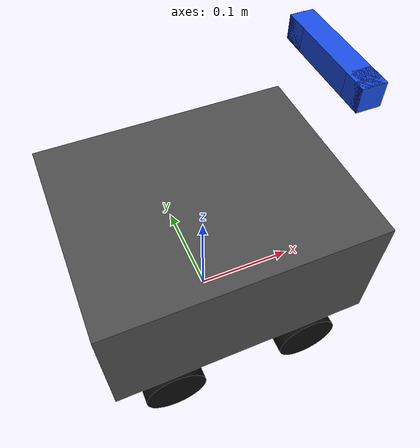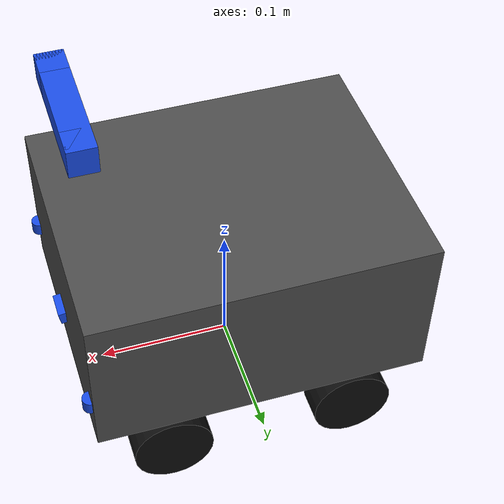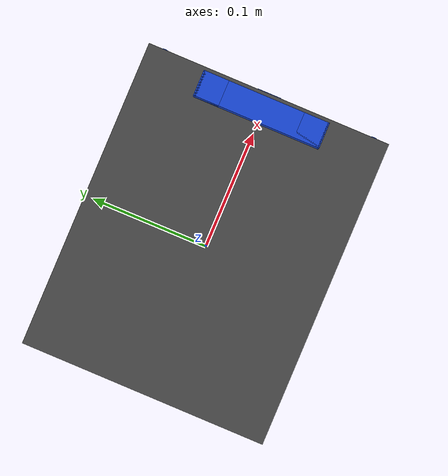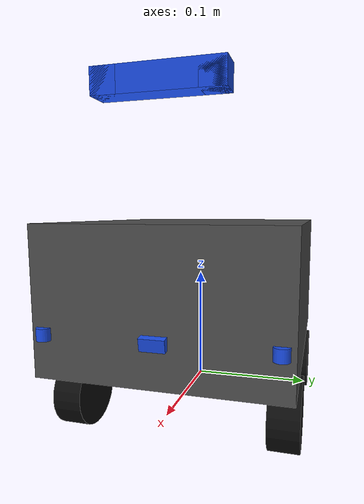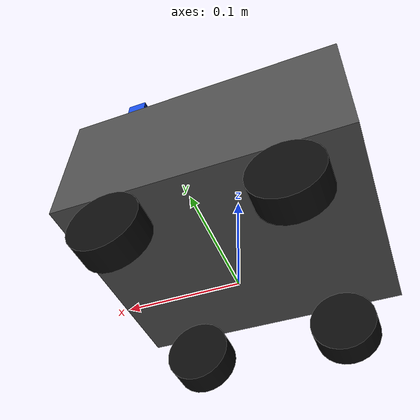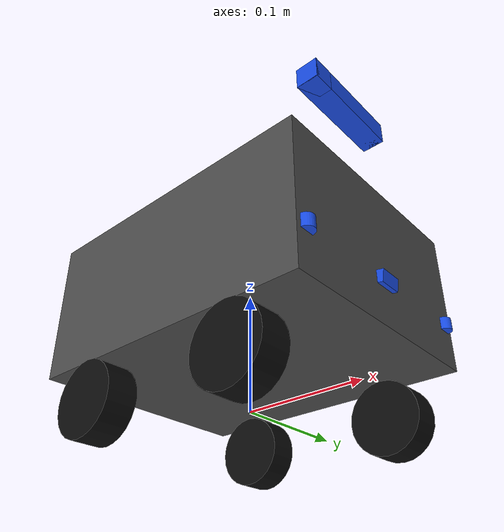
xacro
<?xml version="1.0"?>
<robot name="robo" xmlns:xacro="http://www.ros.org/wiki/xacro">

  <xacro:arg name="use_sim" default="false"/>

  <!-- ================= Placeholder dimension properties ================= -->
  <!-- Chassis -->
  <xacro:property name="chassis_length" value="0.250"/>
  <xacro:property name="chassis_width" value="0.200"/>
  <xacro:property name="chassis_height" value="0.120"/>
  <xacro:property name="chassis_mass" value="1.8"/>
  <!-- ground clearance: half wheel diameter, chassis sits on top of wheel centers -->
  <xacro:property name="ground_clearance" value="0.030"/>

  <!-- Wheels -->
  <xacro:property name="wheel_diameter" value="0.060"/>
  <xacro:property name="wheel_radius" value="${wheel_diameter / 2.0}"/>
  <xacro:property name="wheel_width" value="0.025"/>
  <xacro:property name="wheel_mass" value="0.15"/>
  <xacro:property name="track_width" value="0.180"/>
  <xacro:property name="wheelbase" value="0.140"/>

  <!-- Camera mount / stereo -->
  <xacro:property name="camera_mount_height_above_chassis_top" value="0.100"/>
  <xacro:property name="camera_mount_pitch" value="0.0"/>
  <xacro:property name="stereo_baseline" value="0.080"/>
  <xacro:property name="camera_hfov" value="1.086"/>
  <xacro:property name="camera_width_px" value="1280"/>
  <xacro:property name="camera_height_px" value="720"/>
  <xacro:property name="camera_update_rate" value="30"/>

  <!-- IMU -->
  <xacro:property name="imu_z_offset" value="${ground_clearance + chassis_height / 2.0}"/>

  <!-- ToF -->
  <xacro:property name="tof_pitch" value="0.1745"/> <!-- 10 deg down -->

  <!-- Ultrasonics -->
  <xacro:property name="us_yaw" value="0.3491"/> <!-- 20 deg -->

  <xacro:property name="base_z" value="${ground_clearance + wheel_radius}"/>

  <material name="chassis_grey">
    <color rgba="0.3 0.3 0.3 1.0"/>
  </material>
  <material name="wheel_black">
    <color rgba="0.05 0.05 0.05 1.0"/>
  </material>
  <material name="sensor_blue">
    <color rgba="0.1 0.3 0.9 1.0"/>
  </material>

  <!-- ================= base_link ================= -->
  <link name="base_link"/>

  <!-- ================= chassis ================= -->
  <joint name="base_link_to_chassis" type="fixed">
    <parent link="base_link"/>
    <child link="chassis_link"/>
    <origin xyz="0 0 ${wheel_radius}" rpy="0 0 0"/>
  </joint>

  <link name="chassis_link">
    <visual>
      <origin xyz="0 0 ${chassis_height / 2.0}" rpy="0 0 0"/>
      <geometry>
        <box size="${chassis_length} ${chassis_width} ${chassis_height}"/>
      </geometry>
      <material name="chassis_grey"/>
    </visual>
    <collision>
      <origin xyz="0 0 ${chassis_height / 2.0}" rpy="0 0 0"/>
      <geometry>
        <box size="${chassis_length} ${chassis_width} ${chassis_height}"/>
      </geometry>
    </collision>
    <inertial>
      <origin xyz="0 0 ${chassis_height / 2.0}" rpy="0 0 0"/>
      <mass value="${chassis_mass}"/>
      <inertia
        ixx="${chassis_mass / 12.0 * (chassis_width*chassis_width + chassis_height*chassis_height)}" ixy="0" ixz="0"
        iyy="${chassis_mass / 12.0 * (chassis_length*chassis_length + chassis_height*chassis_height)}" iyz="0"
        izz="${chassis_mass / 12.0 * (chassis_length*chassis_length + chassis_width*chassis_width)}"/>
    </inertial>
  </link>

  <!-- ================= wheels ================= -->
  <xacro:macro name="wheel" params="prefix x_offset y_offset">
    <joint name="wheel_${prefix}_joint" type="continuous">
      <parent link="base_link"/>
      <child link="wheel_${prefix}_link"/>
      <origin xyz="${x_offset} ${y_offset} 0" rpy="${-pi/2} 0 0"/>
      <axis xyz="0 0 1"/>
      <dynamics damping="0.1" friction="0.05"/>
    </joint>
    <link name="wheel_${prefix}_link">
      <visual>
        <geometry>
          <cylinder radius="${wheel_radius}" length="${wheel_width}"/>
        </geometry>
        <material name="wheel_black"/>
      </visual>
      <collision>
        <geometry>
          <cylinder radius="${wheel_radius}" length="${wheel_width}"/>
        </geometry>
      </collision>
      <inertial>
        <mass value="${wheel_mass}"/>
        <inertia
          ixx="${wheel_mass / 12.0 * (3*wheel_radius*wheel_radius + wheel_width*wheel_width)}" ixy="0" ixz="0"
          iyy="${wheel_mass / 12.0 * (3*wheel_radius*wheel_radius + wheel_width*wheel_width)}" iyz="0"
          izz="${wheel_mass / 2.0 * wheel_radius*wheel_radius}"/>
      </inertial>
    </link>
  </xacro:macro>

  <!-- Left pair (fl, rl) and right pair (fr, rr): differential / skid-steer drive,
       DiffDrive plugin (Phase 1) drives left pair and right pair together. -->
  <xacro:wheel prefix="fl" x_offset="${wheelbase / 2.0}"  y_offset="${track_width / 2.0}"/>
  <xacro:wheel prefix="fr" x_offset="${wheelbase / 2.0}"  y_offset="${-track_width / 2.0}"/>
  <xacro:wheel prefix="rl" x_offset="${-wheelbase / 2.0}" y_offset="${track_width / 2.0}"/>
  <xacro:wheel prefix="rr" x_offset="${-wheelbase / 2.0}" y_offset="${-track_width / 2.0}"/>

  <!-- ================= camera mount + stereo cameras ================= -->
  <joint name="base_link_to_camera_mount" type="fixed">
    <parent link="base_link"/>
    <child link="camera_mount_link"/>
    <origin xyz="${chassis_length / 2.0 - 0.02} 0 ${wheel_radius + chassis_height + camera_mount_height_above_chassis_top}"
            rpy="0 ${camera_mount_pitch} 0"/>
  </joint>
  <link name="camera_mount_link">
    <visual>
      <geometry>
        <box size="0.02 0.10 0.02"/>
      </geometry>
      <material name="sensor_blue"/>
    </visual>
  </link>

  <joint name="camera_mount_to_camera_left" type="fixed">
    <parent link="camera_mount_link"/>
    <child link="camera_left_link"/>
    <origin xyz="0 ${stereo_baseline / 2.0} 0" rpy="0 0 0"/>
  </joint>
  <link name="camera_left_link">
    <visual>
      <geometry>
        <box size="0.02 0.02 0.02"/>
      </geometry>
      <material name="sensor_blue"/>
    </visual>
  </link>

  <!-- REP-103: optical frame is Z-forward, X-right, Y-down relative to the
       X-forward, Y-left, Z-up camera link. -->
  <joint name="camera_left_to_optical" type="fixed">
    <parent link="camera_left_link"/>
    <child link="camera_left_optical"/>
    <origin xyz="0 0 0" rpy="${-pi/2} 0 ${-pi/2}"/>
  </joint>
  <link name="camera_left_optical"/>

  <joint name="camera_mount_to_camera_right" type="fixed">
    <parent link="camera_mount_link"/>
    <child link="camera_right_link"/>
    <origin xyz="0 ${-stereo_baseline / 2.0} 0" rpy="0 0 0"/>
  </joint>
  <link name="camera_right_link">
    <visual>
      <geometry>
        <box size="0.02 0.02 0.02"/>
      </geometry>
      <material name="sensor_blue"/>
    </visual>
  </link>

  <joint name="camera_right_to_optical" type="fixed">
    <parent link="camera_right_link"/>
    <child link="camera_right_optical"/>
    <origin xyz="0 0 0" rpy="${-pi/2} 0 ${-pi/2}"/>
  </joint>
  <link name="camera_right_optical"/>

  <!-- ================= IMU ================= -->
  <joint name="base_link_to_imu" type="fixed">
    <parent link="base_link"/>
    <child link="imu_link"/>
    <origin xyz="0 0 ${imu_z_offset}" rpy="0 0 0"/>
  </joint>
  <link name="imu_link">
    <visual>
      <geometry>
        <box size="0.01 0.01 0.005"/>
      </geometry>
      <material name="sensor_blue"/>
    </visual>
  </link>

  <!-- ================= ToF ================= -->
  <joint name="base_link_to_tof" type="fixed">
    <parent link="base_link"/>
    <child link="tof_link"/>
    <origin xyz="${chassis_length / 2.0} 0 ${wheel_radius + chassis_height * 0.3}" rpy="0 ${tof_pitch} 0"/>
  </joint>
  <link name="tof_link">
    <visual>
      <geometry>
        <box size="0.01 0.02 0.01"/>
      </geometry>
      <material name="sensor_blue"/>
    </visual>
  </link>

  <!-- ================= Ultrasonics ================= -->
  <joint name="base_link_to_us_left" type="fixed">
    <parent link="base_link"/>
    <child link="us_left_link"/>
    <origin xyz="${chassis_length / 2.0} ${chassis_width / 2.0 - 0.01} ${wheel_radius + chassis_height * 0.3}"
            rpy="0 0 ${us_yaw}"/>
  </joint>
  <link name="us_left_link">
    <visual>
      <geometry>
        <cylinder radius="0.006" length="0.01"/>
      </geometry>
      <material name="sensor_blue"/>
    </visual>
  </link>

  <joint name="base_link_to_us_right" type="fixed">
    <parent link="base_link"/>
    <child link="us_right_link"/>
    <origin xyz="${chassis_length / 2.0} ${-(chassis_width / 2.0 - 0.01)} ${wheel_radius + chassis_height * 0.3}"
            rpy="0 0 ${-us_yaw}"/>
  </joint>
  <link name="us_right_link">
    <visual>
      <geometry>
        <cylinder radius="0.006" length="0.01"/>
      </geometry>
      <material name="sensor_blue"/>
    </visual>
  </link>

  <!-- ================= Gazebo-only content ================= -->
  <xacro:if value="$(arg use_sim)">
    <xacro:include filename="$(find robo_description)/urdf/robo.gazebo.xacro"/>
  </xacro:if>

</robot>
